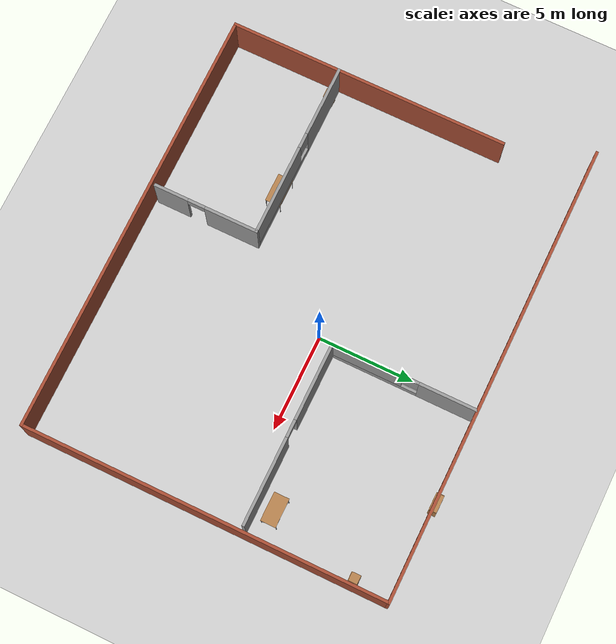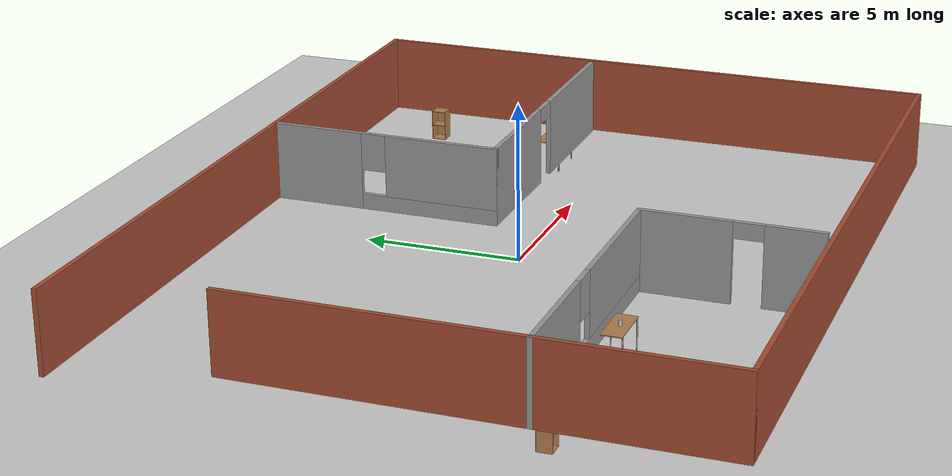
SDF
<sdf version="1.7">
 <world name="default">
  <model name="ground_plane">
   <static>1</static>
   <link name="link">
    <collision name="collision">
     <geometry><plane><normal>0 0 1</normal><size>100 100</size></plane></geometry>
     <surface><friction><ode><mu>100</mu><mu2>50</mu2></ode></friction></surface>
    </collision>
    <visual name="visual">
     <cast_shadows>0</cast_shadows>
     <geometry><plane><normal>0 0 1</normal><size>100 100</size></plane></geometry>
     <material>
      <script><uri>file://media/materials/scripts/gazebo.material</uri><name>Gazebo/Grey</name></script>
     </material>
    </visual>
   </link>
  </model>
  <gravity>0 0 -9.8</gravity>
  <magnetic_field>6e-06 2.3e-05 -4.2e-05</magnetic_field>
  <atmosphere type="adiabatic"/>
  <physics type="ode">
   <max_step_size>0.001</max_step_size>
   <real_time_factor>1</real_time_factor>
   <real_time_update_rate>1000</real_time_update_rate>
  </physics>
  <scene><ambient>0.4 0.4 0.4 1</ambient><background>0.7 0.7 0.7 1</background><shadows>1</shadows></scene>
  <audio><device>default</device></audio>
  <spherical_coordinates>
   <surface_model>EARTH_WGS84</surface_model>
   <latitude_deg>0</latitude_deg>
   <longitude_deg>0</longitude_deg>
   <elevation>0</elevation>
   <heading_deg>0</heading_deg>
  </spherical_coordinates>
  <model name="robot_world">
   <pose>-1.481 -0.9085 0.777659 0 -0 0</pose>
   <link name="Wall_11">
    <pose>-5.75182 -3.68622 0 0 -0 0</pose>
    <visual name="Wall_11_Visual_0">
     <pose>-2.77092 0 1.25 0 -0 0</pose>
     <geometry><box><size>3.70815 0.15 2.5</size></box></geometry>
     <material>
      <script><uri>file://media/materials/scripts/gazebo.material</uri><name>Gazebo/Grey</name></script>
      <ambient>1 1 1 1</ambient>
     </material>
     <meta><layer>0</layer></meta>
    </visual>
    <collision name="Wall_11_Collision_0">
     <geometry><box><size>3.70815 0.15 2.5</size></box></geometry>
     <pose>-2.77092 0 1.25 0 -0 0</pose>
    </collision>
    <visual name="Wall_11_Visual_1">
     <pose>1.85408 0 0.25 0 -0 0</pose>
     <geometry><box><size>5.54185 0.15 0.5</size></box></geometry>
     <material>
      <script><uri>file://media/materials/scripts/gazebo.material</uri><name>Gazebo/Grey</name></script>
      <ambient>1 1 1 1</ambient>
     </material>
     <meta><layer>0</layer></meta>
    </visual>
    <collision name="Wall_11_Collision_1">
     <geometry><box><size>5.54185 0.15 0.5</size></box></geometry>
     <pose>1.85408 0 0.25 0 -0 0</pose>
    </collision>
    <visual name="Wall_11_Visual_2">
     <pose>2.25408 0 1.5 0 -0 0</pose>
     <geometry><box><size>4.74185 0.15 2</size></box></geometry>
     <material>
      <script><uri>file://media/materials/scripts/gazebo.material</uri><name>Gazebo/Grey</name></script>
      <ambient>1 1 1 1</ambient>
     </material>
     <meta><layer>0</layer></meta>
    </visual>
    <collision name="Wall_11_Collision_2">
     <geometry><box><size>4.74185 0.15 2</size></box></geometry>
     <pose>2.25408 0 1.5 0 -0 0</pose>
    </collision>
    <visual name="Wall_11_Visual_3">
     <pose>-0.516848 0 1.9 0 -0 0</pose>
     <geometry><box><size>0.8 0.15 1.2</size></box></geometry>
     <material>
      <script><uri>file://media/materials/scripts/gazebo.material</uri><name>Gazebo/Grey</name></script>
      <ambient>1 1 1 1</ambient>
     </material>
     <meta><layer>0</layer></meta>
    </visual>
    <collision name="Wall_11_Collision_3">
     <geometry><box><size>0.8 0.15 1.2</size></box></geometry>
     <pose>-0.516848 0 1.9 0 -0 0</pose>
    </collision>
   </link>
   <link name="Wall_12">
    <pose>-1.20182 -6.36122 0 0 -0 -1.5708</pose>
    <visual name="Wall_12_Visual_0">
     <pose>-1.34547 0 1.25 0 -0 0</pose>
     <geometry><box><size>2.80907 0.15 2.5</size></box></geometry>
     <material>
      <script><uri>file://media/materials/scripts/gazebo.material</uri><name>Gazebo/Grey</name></script>
      <ambient>1 1 1 1</ambient>
     </material>
     <meta><layer>0</layer></meta>
    </visual>
    <collision name="Wall_12_Collision_0">
     <geometry><box><size>2.80907 0.15 2.5</size></box></geometry>
     <pose>-1.34547 0 1.25 0 -0 0</pose>
    </collision>
    <visual name="Wall_12_Visual_1">
     <pose>1.85453 0 1.25 0 -0 0</pose>
     <geometry><box><size>1.79093 0.15 2.5</size></box></geometry>
     <material>
      <script><uri>file://media/materials/scripts/gazebo.material</uri><name>Gazebo/Grey</name></script>
      <ambient>1 1 1 1</ambient>
     </material>
     <meta><layer>0</layer></meta>
    </visual>
    <collision name="Wall_12_Collision_1">
     <geometry><box><size>1.79093 0.15 2.5</size></box></geometry>
     <pose>1.85453 0 1.25 0 -0 0</pose>
    </collision>
    <visual name="Wall_12_Visual_2">
     <pose>0.509068 0 2.25 0 -0 0</pose>
     <geometry><box><size>0.9 0.15 0.5</size></box></geometry>
     <material>
      <script><uri>file://media/materials/scripts/gazebo.material</uri><name>Gazebo/Grey</name></script>
      <ambient>1 1 1 1</ambient>
     </material>
     <meta><layer>0</layer></meta>
    </visual>
    <collision name="Wall_12_Collision_2">
     <geometry><box><size>0.9 0.15 0.5</size></box></geometry>
     <pose>0.509068 0 2.25 0 -0 0</pose>
    </collision>
   </link>
   <link name="Wall_14">
    <pose>2.15142 5.58733 0 0 -0 -1.5708</pose>
    <visual name="Wall_14_Visual_0">
     <pose>-2.24971 0 1.25 0 -0 0</pose>
     <geometry><box><size>3.00058 0.15 2.5</size></box></geometry>
     <material>
      <script><uri>file://media/materials/scripts/gazebo.material</uri><name>Gazebo/Grey</name></script>
      <ambient>1 1 1 1</ambient>
     </material>
     <meta><layer>0</layer></meta>
    </visual>
    <collision name="Wall_14_Collision_0">
     <geometry><box><size>3.00058 0.15 2.5</size></box></geometry>
     <pose>-2.24971 0 1.25 0 -0 0</pose>
    </collision>
    <visual name="Wall_14_Visual_1">
     <pose>1.50029 0 0.25 0 -0 0</pose>
     <geometry><box><size>4.49942 0.15 0.5</size></box></geometry>
     <material>
      <script><uri>file://media/materials/scripts/gazebo.material</uri><name>Gazebo/Grey</name></script>
      <ambient>1 1 1 1</ambient>
     </material>
     <meta><layer>0</layer></meta>
    </visual>
    <collision name="Wall_14_Collision_1">
     <geometry><box><size>4.49942 0.15 0.5</size></box></geometry>
     <pose>1.50029 0 0.25 0 -0 0</pose>
    </collision>
    <visual name="Wall_14_Visual_2">
     <pose>1.90029 0 1.5 0 -0 0</pose>
     <geometry><box><size>3.69942 0.15 2</size></box></geometry>
     <material>
      <script><uri>file://media/materials/scripts/gazebo.material</uri><name>Gazebo/Grey</name></script>
      <ambient>1 1 1 1</ambient>
     </material>
     <meta><layer>0</layer></meta>
    </visual>
    <collision name="Wall_14_Collision_2">
     <geometry><box><size>3.69942 0.15 2</size></box></geometry>
     <pose>1.90029 0 1.5 0 -0 0</pose>
    </collision>
    <visual name="Wall_14_Visual_3">
     <pose>-0.349418 0 1.9 0 -0 0</pose>
     <geometry><box><size>0.8 0.15 1.2</size></box></geometry>
     <material>
      <script><uri>file://media/materials/scripts/gazebo.material</uri><name>Gazebo/Grey</name></script>
      <ambient>1 1 1 1</ambient>
     </material>
     <meta><layer>0</layer></meta>
    </visual>
    <collision name="Wall_14_Collision_3">
     <geometry><box><size>0.8 0.15 1.2</size></box></geometry>
     <pose>-0.349418 0 1.9 0 -0 0</pose>
    </collision>
   </link>
   <link name="Wall_15">
    <pose>6.82643 1.91233 0 0 -0 0</pose>
    <visual name="Wall_15_Visual_0">
     <pose>-2.70865 0 1.25 0 -0 0</pose>
     <geometry><box><size>4.08269 0.15 2.5</size></box></geometry>
     <material>
      <script><uri>file://media/materials/scripts/gazebo.material</uri><name>Gazebo/Grey</name></script>
      <ambient>1 1 1 1</ambient>
     </material>
     <meta><layer>0</layer></meta>
    </visual>
    <collision name="Wall_15_Collision_0">
     <geometry><box><size>4.08269 0.15 2.5</size></box></geometry>
     <pose>-2.70865 0 1.25 0 -0 0</pose>
    </collision>
    <visual name="Wall_15_Visual_1">
     <pose>2.49135 0 1.25 0 -0 0</pose>
     <geometry><box><size>4.51731 0.15 2.5</size></box></geometry>
     <material>
      <script><uri>file://media/materials/scripts/gazebo.material</uri><name>Gazebo/Grey</name></script>
      <ambient>1 1 1 1</ambient>
     </material>
     <meta><layer>0</layer></meta>
    </visual>
    <collision name="Wall_15_Collision_1">
     <geometry><box><size>4.51731 0.15 2.5</size></box></geometry>
     <pose>2.49135 0 1.25 0 -0 0</pose>
    </collision>
    <visual name="Wall_15_Visual_2">
     <pose>-0.217306 0 2.25 0 -0 0</pose>
     <geometry><box><size>0.9 0.15 0.5</size></box></geometry>
     <material>
      <script><uri>file://media/materials/scripts/gazebo.material</uri><name>Gazebo/Grey</name></script>
      <ambient>1 1 1 1</ambient>
     </material>
     <meta><layer>0</layer></meta>
    </visual>
    <collision name="Wall_15_Collision_2">
     <geometry><box><size>0.9 0.15 0.5</size></box></geometry>
     <pose>-0.217306 0 2.25 0 -0 0</pose>
    </collision>
   </link>
   <link name="Wall_6">
    <collision name="Wall_6_Collision">
     <geometry><box><size>14.5 0.15 2.5</size></box></geometry>
     <pose>0 0 1.25 0 -0 0</pose>
    </collision>
    <visual name="Wall_6_Visual">
     <pose>0 0 1.25 0 -0 0</pose>
     <geometry><box><size>14.5 0.15 2.5</size></box></geometry>
     <material>
      <script><uri>file://media/materials/scripts/gazebo.material</uri><name>Gazebo/Bricks</name></script>
      <ambient>1 1 1 1</ambient>
     </material>
     <meta><layer>0</layer></meta>
    </visual>
    <pose>-10.3 -2.125 0 0 -0 -1.5708</pose>
   </link>
   <link name="Wall_7">
    <collision name="Wall_7_Collision">
     <geometry><box><size>22.25 0.15 2.5</size></box></geometry>
     <pose>0 0 1.25 0 -0 0</pose>
    </collision>
    <visual name="Wall_7_Visual">
     <pose>0 0 1.25 0 -0 0</pose>
     <geometry><box><size>22.25 0.15 2.5</size></box></geometry>
     <material>
      <script><uri>file://media/materials/scripts/gazebo.material</uri><name>Gazebo/Bricks</name></script>
      <ambient>1 1 1 1</ambient>
     </material>
     <meta><layer>0</layer></meta>
    </visual>
    <pose>0.75 -9.3 0 0 -0 0</pose>
   </link>
   <link name="Wall_8">
    <collision name="Wall_8_Collision">
     <geometry><box><size>18.75 0.15 2.5</size></box></geometry>
     <pose>0 0 1.25 0 -0 0</pose>
    </collision>
    <visual name="Wall_8_Visual">
     <pose>0 0 1.25 0 -0 0</pose>
     <geometry><box><size>18.75 0.15 2.5</size></box></geometry>
     <material>
      <script><uri>file://media/materials/scripts/gazebo.material</uri><name>Gazebo/Bricks</name></script>
      <ambient>1 1 1 1</ambient>
     </material>
     <meta><layer>0</layer></meta>
    </visual>
    <pose>11.8 -0 0 0 -0 1.5708</pose>
   </link>
   <link name="Wall_9">
    <collision name="Wall_9_Collision">
     <geometry><box><size>23.75 0.15 2.5</size></box></geometry>
     <pose>0 0 1.25 0 -0 0</pose>
    </collision>
    <visual name="Wall_9_Visual">
     <pose>0 0 1.25 0 -0 0</pose>
     <geometry><box><size>23.75 0.15 2.5</size></box></geometry>
     <material>
      <script><uri>file://media/materials/scripts/gazebo.material</uri><name>Gazebo/Bricks</name></script>
      <ambient>1 1 1 1</ambient>
     </material>
     <meta><layer>0</layer></meta>
    </visual>
    <pose>-0 9.3 0 0 -0 3.14159</pose>
   </link>
   <static>1</static>
  </model>
  <model name="table">
   <static>1</static>
   <link name="link">
    <collision name="surface">
     <pose>0 0 1 0 -0 0</pose>
     <geometry><box><size>1.5 0.8 0.03</size></box></geometry>
     <surface><friction><ode><mu>0.6</mu><mu2>0.6</mu2></ode></friction></surface>
    </collision>
    <visual name="visual1">
     <pose>0 0 1 0 -0 0</pose>
     <geometry><box><size>1.5 0.8 0.03</size></box></geometry>
     <material>
      <script><uri>file://media/materials/scripts/gazebo.material</uri><name>Gazebo/Wood</name></script>
     </material>
    </visual>
    <collision name="front_left_leg">
     <pose>0.68 0.38 0.5 0 -0 0</pose>
     <geometry><cylinder><radius>0.02</radius><length>1</length></cylinder></geometry>
    </collision>
    <visual name="front_left_leg">
     <pose>0.68 0.38 0.5 0 -0 0</pose>
     <geometry><cylinder><radius>0.02</radius><length>1</length></cylinder></geometry>
     <material>
      <script><uri>file://media/materials/scripts/gazebo.material</uri><name>Gazebo/Grey</name></script>
     </material>
    </visual>
    <collision name="front_right_leg">
     <pose>0.68 -0.38 0.5 0 -0 0</pose>
     <geometry><cylinder><radius>0.02</radius><length>1</length></cylinder></geometry>
    </collision>
    <visual name="front_right_leg">
     <pose>0.68 -0.38 0.5 0 -0 0</pose>
     <geometry><cylinder><radius>0.02</radius><length>1</length></cylinder></geometry>
     <material>
      <script><uri>file://media/materials/scripts/gazebo.material</uri><name>Gazebo/Grey</name></script>
     </material>
    </visual>
    <collision name="back_right_leg">
     <pose>-0.68 -0.38 0.5 0 -0 0</pose>
     <geometry><cylinder><radius>0.02</radius><length>1</length></cylinder></geometry>
    </collision>
    <visual name="back_right_leg">
     <pose>-0.68 -0.38 0.5 0 -0 0</pose>
     <geometry><cylinder><radius>0.02</radius><length>1</length></cylinder></geometry>
     <material>
      <script><uri>file://media/materials/scripts/gazebo.material</uri><name>Gazebo/Grey</name></script>
     </material>
    </visual>
    <collision name="back_left_leg">
     <pose>-0.68 0.38 0.5 0 -0 0</pose>
     <geometry><cylinder><radius>0.02</radius><length>1</length></cylinder></geometry>
    </collision>
    <visual name="back_left_leg">
     <pose>-0.68 0.38 0.5 0 -0 0</pose>
     <geometry><cylinder><radius>0.02</radius><length>1</length></cylinder></geometry>
     <material>
      <script><uri>file://media/materials/scripts/gazebo.material</uri><name>Gazebo/Grey</name></script>
     </material>
    </visual>
   </link>
   <pose>8.54638 1.79675 0 0 -0 0</pose>
  </model>
  <model name="table_0">
   <static>1</static>
   <link name="link">
    <collision name="surface">
     <pose>0 0 1 0 -0 0</pose>
     <geometry><box><size>1.5 0.8 0.03</size></box></geometry>
     <surface><friction><ode><mu>0.6</mu><mu2>0.6</mu2></ode></friction></surface>
    </collision>
    <visual name="visual1">
     <pose>0 0 1 0 -0 0</pose>
     <geometry><box><size>1.5 0.8 0.03</size></box></geometry>
     <material>
      <script><uri>file://media/materials/scripts/gazebo.material</uri><name>Gazebo/Wood</name></script>
     </material>
    </visual>
    <collision name="front_left_leg">
     <pose>0.68 0.38 0.5 0 -0 0</pose>
     <geometry><cylinder><radius>0.02</radius><length>1</length></cylinder></geometry>
    </collision>
    <visual name="front_left_leg">
     <pose>0.68 0.38 0.5 0 -0 0</pose>
     <geometry><cylinder><radius>0.02</radius><length>1</length></cylinder></geometry>
     <material>
      <script><uri>file://media/materials/scripts/gazebo.material</uri><name>Gazebo/Grey</name></script>
     </material>
    </visual>
    <collision name="front_right_leg">
     <pose>0.68 -0.38 0.5 0 -0 0</pose>
     <geometry><cylinder><radius>0.02</radius><length>1</length></cylinder></geometry>
    </collision>
    <visual name="front_right_leg">
     <pose>0.68 -0.38 0.5 0 -0 0</pose>
     <geometry><cylinder><radius>0.02</radius><length>1</length></cylinder></geometry>
     <material>
      <script><uri>file://media/materials/scripts/gazebo.material</uri><name>Gazebo/Grey</name></script>
     </material>
    </visual>
    <collision name="back_right_leg">
     <pose>-0.68 -0.38 0.5 0 -0 0</pose>
     <geometry><cylinder><radius>0.02</radius><length>1</length></cylinder></geometry>
    </collision>
    <visual name="back_right_leg">
     <pose>-0.68 -0.38 0.5 0 -0 0</pose>
     <geometry><cylinder><radius>0.02</radius><length>1</length></cylinder></geometry>
     <material>
      <script><uri>file://media/materials/scripts/gazebo.material</uri><name>Gazebo/Grey</name></script>
     </material>
    </visual>
    <collision name="back_left_leg">
     <pose>-0.68 0.38 0.5 0 -0 0</pose>
     <geometry><cylinder><radius>0.02</radius><length>1</length></cylinder></geometry>
    </collision>
    <visual name="back_left_leg">
     <pose>-0.68 0.38 0.5 0 -0 0</pose>
     <geometry><cylinder><radius>0.02</radius><length>1</length></cylinder></geometry>
     <material>
      <script><uri>file://media/materials/scripts/gazebo.material</uri><name>Gazebo/Grey</name></script>
     </material>
    </visual>
   </link>
   <pose>-5.66656 -4.90541 0 0 -0 0</pose>
  </model>
  <model name="cabinet">
   <static>1</static>
   <link name="cabinet_bottom_plate">
    <inertial>
     <pose>0 0 -1 0 -0 0</pose>
     <inertia><ixx>2.05</ixx><ixy>0</ixy><ixz>0</ixz><iyy>2.05</iyy><iyz>0</iyz><izz>2.05</izz></inertia>
     <mass>25</mass>
    </inertial>
    <collision name="cabinet_bottom_plate_geom">
     <pose>0 0 0.01 0 -0 0</pose>
     <geometry><box><size>0.45 0.45 0.02</size></box></geometry>
    </collision>
    <visual name="cabinet_bottom_plate_geom_visual">
     <pose>0 0 0.01 0 -0 0</pose>
     <geometry><box><size>0.45 0.45 0.02</size></box></geometry>
     <material>
      <script><uri>file://media/materials/scripts/gazebo.material</uri><name>Gazebo/Wood</name></script>
     </material>
    </visual>
    <collision name="cabinet_bottom_plate_geom_cabinet_back_plate">
     <pose>0.235 0 0.51 0 -0 0</pose>
     <geometry><box><size>0.02 0.45 1.02</size></box></geometry>
    </collision>
    <visual name="cabinet_bottom_plate_geom_cabinet_back_plate_visual">
     <pose>0.235 0 0.51 0 -0 0</pose>
     <geometry><box><size>0.02 0.45 1.02</size></box></geometry>
     <material>
      <script><uri>file://media/materials/scripts/gazebo.material</uri><name>Gazebo/Wood</name></script>
     </material>
    </visual>
    <collision name="cabinet_bottom_plate_geom_cabinet_left_plate">
     <pose>0 0.235 0.51 0 -0 0</pose>
     <geometry><box><size>0.45 0.02 1.02</size></box></geometry>
    </collision>
    <visual name="cabinet_bottom_plate_geom_cabinet_left_plate_visual">
     <pose>0 0.235 0.51 0 -0 0</pose>
     <geometry><box><size>0.45 0.02 1.02</size></box></geometry>
     <material>
      <script><uri>file://media/materials/scripts/gazebo.material</uri><name>Gazebo/Wood</name></script>
     </material>
    </visual>
    <collision name="cabinet_bottom_plate_geom_cabinet_middle_plate">
     <pose>0 0 0.51 0 -0 0</pose>
     <geometry><box><size>0.45 0.45 0.02</size></box></geometry>
    </collision>
    <visual name="cabinet_bottom_plate_geom_cabinet_middle_plate_visual">
     <pose>0 0 0.51 0 -0 0</pose>
     <geometry><box><size>0.45 0.45 0.02</size></box></geometry>
     <material>
      <script><uri>file://media/materials/scripts/gazebo.material</uri><name>Gazebo/Wood</name></script>
     </material>
    </visual>
    <collision name="cabinet_bottom_plate_geom_cabinet_right_plate">
     <pose>0 -0.235 0.51 0 -0 0</pose>
     <geometry><box><size>0.45 0.02 1.02</size></box></geometry>
    </collision>
    <visual name="cabinet_bottom_plate_geom_cabinet_right_plate_visual">
     <pose>0 -0.235 0.51 0 -0 0</pose>
     <geometry><box><size>0.45 0.02 1.02</size></box></geometry>
     <material>
      <script><uri>file://media/materials/scripts/gazebo.material</uri><name>Gazebo/Wood</name></script>
     </material>
    </visual>
    <collision name="cabinet_bottom_plate_geom_cabinet_top_plate">
     <pose>0 0 1.01 0 -0 0</pose>
     <geometry><box><size>0.45 0.45 0.02</size></box></geometry>
    </collision>
    <visual name="cabinet_bottom_plate_geom_cabinet_top_plate_visual">
     <pose>0 0 1.01 0 -0 0</pose>
     <geometry><box><size>0.45 0.45 0.02</size></box></geometry>
     <material>
      <script><uri>file://media/materials/scripts/gazebo.material</uri><name>Gazebo/Wood</name></script>
     </material>
    </visual>
   </link>
   <pose>-11.2979 -4.87207 0 0 -0 1.5749</pose>
  </model>
  <model name="cabinet_0">
   <static>1</static>
   <link name="cabinet_bottom_plate">
    <inertial>
     <pose>0 0 -1 0 -0 0</pose>
     <inertia><ixx>2.05</ixx><ixy>0</ixy><ixz>0</ixz><iyy>2.05</iyy><iyz>0</iyz><izz>2.05</izz></inertia>
     <mass>25</mass>
    </inertial>
    <collision name="cabinet_bottom_plate_geom">
     <pose>0 0 0.01 0 -0 0</pose>
     <geometry><box><size>0.45 0.45 0.02</size></box></geometry>
    </collision>
    <visual name="cabinet_bottom_plate_geom_visual">
     <pose>0 0 0.01 0 -0 0</pose>
     <geometry><box><size>0.45 0.45 0.02</size></box></geometry>
     <material>
      <script><uri>file://media/materials/scripts/gazebo.material</uri><name>Gazebo/Wood</name></script>
     </material>
    </visual>
    <collision name="cabinet_bottom_plate_geom_cabinet_back_plate">
     <pose>0.235 0 0.51 0 -0 0</pose>
     <geometry><box><size>0.02 0.45 1.02</size></box></geometry>
    </collision>
    <visual name="cabinet_bottom_plate_geom_cabinet_back_plate_visual">
     <pose>0.235 0 0.51 0 -0 0</pose>
     <geometry><box><size>0.02 0.45 1.02</size></box></geometry>
     <material>
      <script><uri>file://media/materials/scripts/gazebo.material</uri><name>Gazebo/Wood</name></script>
     </material>
    </visual>
    <collision name="cabinet_bottom_plate_geom_cabinet_left_plate">
     <pose>0 0.235 0.51 0 -0 0</pose>
     <geometry><box><size>0.45 0.02 1.02</size></box></geometry>
    </collision>
    <visual name="cabinet_bottom_plate_geom_cabinet_left_plate_visual">
     <pose>0 0.235 0.51 0 -0 0</pose>
     <geometry><box><size>0.45 0.02 1.02</size></box></geometry>
     <material>
      <script><uri>file://media/materials/scripts/gazebo.material</uri><name>Gazebo/Wood</name></script>
     </material>
    </visual>
    <collision name="cabinet_bottom_plate_geom_cabinet_middle_plate">
     <pose>0 0 0.51 0 -0 0</pose>
     <geometry><box><size>0.45 0.45 0.02</size></box></geometry>
    </collision>
    <visual name="cabinet_bottom_plate_geom_cabinet_middle_plate_visual">
     <pose>0 0 0.51 0 -0 0</pose>
     <geometry><box><size>0.45 0.45 0.02</size></box></geometry>
     <material>
      <script><uri>file://media/materials/scripts/gazebo.material</uri><name>Gazebo/Wood</name></script>
     </material>
    </visual>
    <collision name="cabinet_bottom_plate_geom_cabinet_right_plate">
     <pose>0 -0.235 0.51 0 -0 0</pose>
     <geometry><box><size>0.45 0.02 1.02</size></box></geometry>
    </collision>
    <visual name="cabinet_bottom_plate_geom_cabinet_right_plate_visual">
     <pose>0 -0.235 0.51 0 -0 0</pose>
     <geometry><box><size>0.45 0.02 1.02</size></box></geometry>
     <material>
      <script><uri>file://media/materials/scripts/gazebo.material</uri><name>Gazebo/Wood</name></script>
     </material>
    </visual>
    <collision name="cabinet_bottom_plate_geom_cabinet_top_plate">
     <pose>0 0 1.01 0 -0 0</pose>
     <geometry><box><size>0.45 0.45 0.02</size></box></geometry>
    </collision>
    <visual name="cabinet_bottom_plate_geom_cabinet_top_plate_visual">
     <pose>0 0 1.01 0 -0 0</pose>
     <geometry><box><size>0.45 0.45 0.02</size></box></geometry>
     <material>
      <script><uri>file://media/materials/scripts/gazebo.material</uri><name>Gazebo/Wood</name></script>
     </material>
    </visual>
   </link>
   <pose>9.78541 6.49312 0 0 -0 0</pose>
  </model>
  <model name="bookshelf">
   <static>1</static>
   <link name="link">
    <inertial><mass>1</mass></inertial>
    <collision name="back">
     <pose>0 0.005 0.6 0 -0 0</pose>
     <geometry><box><size>0.9 0.01 1.2</size></box></geometry>
    </collision>
    <visual name="visual1">
     <pose>0 0.005 0.6 0 -0 0</pose>
     <geometry><box><size>0.9 0.01 1.2</size></box></geometry>
     <material>
      <script><uri>file://media/materials/scripts/gazebo.material</uri><name>Gazebo/Wood</name></script>
     </material>
    </visual>
    <collision name="left_side">
     <pose>0.45 -0.195 0.6 0 -0 0</pose>
     <geometry><box><size>0.02 0.4 1.2</size></box></geometry>
    </collision>
    <visual name="visual2">
     <pose>0.45 -0.195 0.6 0 -0 0</pose>
     <geometry><box><size>0.02 0.4 1.2</size></box></geometry>
     <material>
      <script><uri>file://media/materials/scripts/gazebo.material</uri><name>Gazebo/Wood</name></script>
     </material>
    </visual>
    <collision name="right_side">
     <pose>-0.45 -0.195 0.6 0 -0 0</pose>
     <geometry><box><size>0.02 0.4 1.2</size></box></geometry>
    </collision>
    <visual name="visual3">
     <pose>-0.45 -0.195 0.6 0 -0 0</pose>
     <geometry><box><size>0.02 0.4 1.2</size></box></geometry>
     <material>
      <script><uri>file://media/materials/scripts/gazebo.material</uri><name>Gazebo/Wood</name></script>
     </material>
    </visual>
    <collision name="bottom">
     <pose>0 -0.195 0.03 0 -0 0</pose>
     <geometry><box><size>0.88 0.4 0.06</size></box></geometry>
    </collision>
    <visual name="visual4">
     <pose>0 -0.195 0.03 0 -0 0</pose>
     <geometry><box><size>0.88 0.4 0.06</size></box></geometry>
     <material>
      <script><uri>file://media/materials/scripts/gazebo.material</uri><name>Gazebo/Wood</name></script>
     </material>
    </visual>
    <collision name="top">
     <pose>0 -0.195 1.19 0 -0 0</pose>
     <geometry><box><size>0.88 0.4 0.02</size></box></geometry>
    </collision>
    <visual name="visual5">
     <pose>0 -0.195 1.19 0 -0 0</pose>
     <geometry><box><size>0.88 0.4 0.02</size></box></geometry>
     <material>
      <script><uri>file://media/materials/scripts/gazebo.material</uri><name>Gazebo/Wood</name></script>
     </material>
    </visual>
    <collision name="low_shelf">
     <pose>0 -0.195 0.43 0 -0 0</pose>
     <geometry><box><size>0.88 0.4 0.02</size></box></geometry>
    </collision>
    <visual name="visual6">
     <pose>0 -0.195 0.43 0 -0 0</pose>
     <geometry><box><size>0.88 0.4 0.02</size></box></geometry>
     <material>
      <script><uri>file://media/materials/scripts/gazebo.material</uri><name>Gazebo/Wood</name></script>
     </material>
    </visual>
    <collision name="high_shelf">
     <pose>0 -0.195 0.8 0 -0 0</pose>
     <geometry><box><size>0.88 0.4 0.02</size></box></geometry>
    </collision>
    <visual name="visual7">
     <pose>0 -0.195 0.8 0 -0 0</pose>
     <geometry><box><size>0.88 0.4 0.02</size></box></geometry>
     <material>
      <script><uri>file://media/materials/scripts/gazebo.material</uri><name>Gazebo/Wood</name></script>
     </material>
    </visual>
   </link>
   <pose>5.01938 8.65328 0 0 -0 0</pose>
  </model>
  <model name="beer">
   <link name="link">
    <pose>0 0 0.115 0 -0 0</pose>
    <inertial>
     <mass>0.39</mass>
     <inertia><ixx>0.00058</ixx><ixy>0</ixy><ixz>0</ixz><iyy>0.00058</iyy><iyz>0</iyz><izz>0.00019</izz></inertia>
    </inertial>
    <collision name="collision">
     <geometry><cylinder><radius>0.055</radius><length>0.23</length></cylinder></geometry>
    </collision>
    <visual name="visual">
     <geometry><cylinder><radius>0.055</radius><length>0.23</length></cylinder></geometry>
     <material>
      <script>
       <uri>model://beer/materials/scripts</uri>
       <uri>model://beer/materials/textures</uri>
       <name>Beer/Diffuse</name>
      </script>
     </material>
    </visual>
   </link>
   <pose>-5.66847 -4.99897 0.954221 0 -0 0</pose>
  </model>
  <light name="user_point_light_0" type="point">
   <pose>-14.3686 15.7902 1 0 -0 0</pose>
   <diffuse>0.5 0.5 0.5 1</diffuse>
   <specular>0.1 0.1 0.1 1</specular>
   <attenuation>
    <range>20</range>
    <constant>0.5</constant>
    <linear>0.01</linear>
    <quadratic>0.001</quadratic>
   </attenuation>
   <cast_shadows>0</cast_shadows>
   <direction>0 0 -1</direction>
  </light>
  <light name="user_point_light_1" type="point">
   <pose>0.435814 -19.2194 1 0 -0 0</pose>
   <diffuse>0.5 0.5 0.5 1</diffuse>
   <specular>0.1 0.1 0.1 1</specular>
   <attenuation>
    <range>20</range>
    <constant>0.5</constant>
    <linear>0.01</linear>
    <quadratic>0.001</quadratic>
   </attenuation>
   <cast_shadows>0</cast_shadows>
   <direction>0 0 -1</direction>
  </light>
  <light name="user_point_light_2" type="point">
   <pose>19.9276 11.8957 1 0 -0 0</pose>
   <diffuse>0.5 0.5 0.5 1</diffuse>
   <specular>0.1 0.1 0.1 1</specular>
   <attenuation>
    <range>20</range>
    <constant>0.5</constant>
    <linear>0.01</linear>
    <quadratic>0.001</quadratic>
   </attenuation>
   <cast_shadows>0</cast_shadows>
   <direction>0 0 -1</direction>
  </light>
  <light name="user_point_light_3" type="point">
   <pose>-15.2759 -23.728 1 0 -0 0</pose>
   <diffuse>0.5 0.5 0.5 1</diffuse>
   <specular>0.1 0.1 0.1 1</specular>
   <attenuation>
    <range>20</range>
    <constant>0.5</constant>
    <linear>0.01</linear>
    <quadratic>0.001</quadratic>
   </attenuation>
   <cast_shadows>0</cast_shadows>
   <direction>0 0 -1</direction>
  </light>
 </world>
</sdf>
